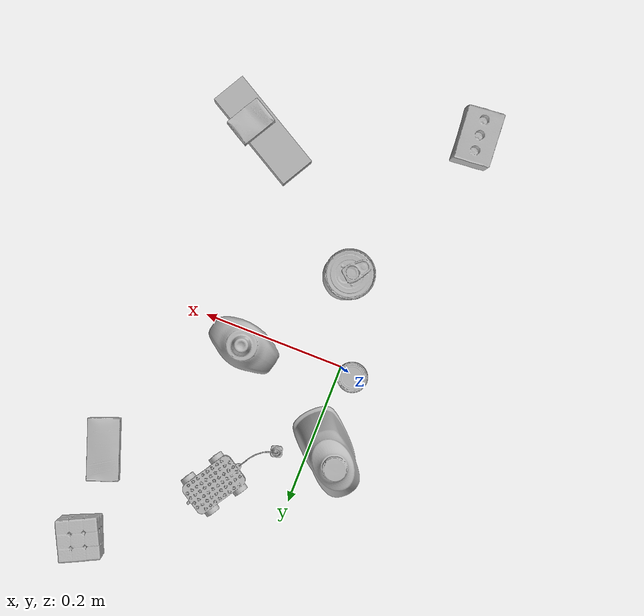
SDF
<sdf version="1.4">
  <world name="default">
    <light name="light1" type="point">
      <pose>0 0 1 0 0 0</pose>
      <diffuse>3 3 3 1</diffuse>
      <specular>3 3 3 1</specular>
    </light>
    <light name="light2" type="point">
      <pose>0 0.5 2 0 0 0</pose>
      <diffuse>1 1 1 1</diffuse>
      <specular>1 1 1 1</specular>
    </light>
    <light name="light3" type="point">
      <pose>0 0.5 2 0 0 0</pose>
      <diffuse>3 3 3 1</diffuse>
      <specular>3 3 3 1</specular>
    </light>
    <scene>
      <ambient>0.7 0.7 0.7</ambient>
    </scene>
    <model name="bottle1">
      <link name="link_bottle1">
        <collision name="default">
          <geometry>
            <mesh>
              <uri>model://bleach_cleanser/collision_meshes/collision.obj</uri>
              <scale>1.0 1.0 1.0</scale>
            </mesh>
          </geometry>
          <surface>
            <friction>
              <ode>
                <mu>0.5</mu>
                <mu2>0.5</mu2>
              </ode>
            </friction>
          <contact>
        <ode>
            <max_vel>0</max_vel>
            <min_depth>0.0001</min_depth>
            <kp>1e8</kp>
        </ode>
    </contact></surface>
        </collision>
        <visual name="default">
          <geometry>
            <mesh>
              <uri>model://bleach_cleanser/visual_meshes/visual.dae</uri>
              <scale>1.0 1.0 1.0</scale>
            </mesh>
          </geometry>
        </visual>
        <inertial>
          <mass>1.2697166204452515</mass>
          <pose>0.00012193183647468686 0.003783883061259985 -0.02442161738872528 -0.07381670616315505 0.00042011510954057825 -0.0068750724928957506</pose>
          <inertia>
            <ixx>0.0061798943</ixx>
            <iyy>0.0057587572</iyy>
            <izz>0.0010566014</izz>
            <ixy>0</ixy>
            <ixz>0</ixz>
            <iyz>0</iyz>
          </inertia>
        </inertial>
      </link>
      <pose>-0.01806124672293663 0.10745850205421448 0.1257629543542862 -0.004417069552187082 0.005747322516653199 0.8296958988827333</pose>
    </model>
    <model name="bottle2">
      <link name="link_bottle2">
        <collision name="default">
          <geometry>
            <mesh>
              <uri>model://mustard_bottle/collision_meshes/collision.obj</uri>
              <scale>1.0 1.0 1.0</scale>
            </mesh>
          </geometry>
          <surface>
            <friction>
              <ode>
                <mu>0.5</mu>
                <mu2>0.5</mu2>
              </ode>
            </friction>
          <contact>
        <ode>
            <max_vel>0</max_vel>
            <min_depth>0.0001</min_depth>
            <kp>1e8</kp>
        </ode>
    </contact></surface>
        </collision>
        <visual name="default">
          <geometry>
            <mesh>
              <uri>model://mustard_bottle/visual_meshes/visual.dae</uri>
              <scale>1.0 1.0 1.0</scale>
            </mesh>
          </geometry>
        </visual>
        <inertial>
          <mass>0.7653017640113831</mass>
          <pose>0.000503245391882956 -0.00015647402324248105 -0.01747579500079155 0.0004182327658992807 0.0009465785893850277 0.024853714910462506</pose>
          <inertia>
            <ixx>0.0021251384</ixx>
            <iyy>0.0018646289</iyy>
            <izz>0.0005600813</izz>
            <ixy>0</ixy>
            <ixz>0</ixz>
            <iyz>0</iyz>
          </inertia>
        </inertial>
      </link>
      <pose>0.13551995158195496 0.01893453858792782 0.09583088755607605 -0.012050708587447244 -0.004889914331616507 -1.8319341797772697</pose>
    </model>
    <model name="toy1">
      <link name="link_toy1">
        <collision name="default">
          <geometry>
            <mesh>
              <uri>model://g_lego_duplo/collision_meshes/collision.obj</uri>
              <scale>0.5 0.5 0.5</scale>
            </mesh>
          </geometry>
          <surface>
            <friction>
              <ode>
                <mu>0.5</mu>
                <mu2>0.5</mu2>
              </ode>
            </friction>
          <contact>
        <ode>
            <max_vel>0</max_vel>
            <min_depth>0.0001</min_depth>
            <kp>1e8</kp>
        </ode>
    </contact></surface>
        </collision>
        <visual name="default">
          <geometry>
            <mesh>
              <uri>model://g_lego_duplo/visual_meshes/visual.dae</uri>
              <scale>0.5 0.5 0.5</scale>
            </mesh>
          </geometry>
        </visual>
        <inertial>
          <mass>0.058442164212465286</mass>
          <pose>-0.025023842230439186 0.0008777315961197019 0.0019403378246352077 0.010962970283690966 0.0381082459421261 -0.09653034831594848</pose>
          <inertia>
            <ixx>2.1170836e-05</ixx>
            <iyy>6.4006235e-05</iyy>
            <izz>8.007422e-05</izz>
            <ixy>0</ixy>
            <ixz>0</ixz>
            <iyz>0</iyz>
          </inertia>
        </inertial>
      </link>
      <pose>0.08677255362272263 0.18954718112945557 0.014907903037965298 0.00042191529667390303 -0.0022882666036644524 -2.1362021461978338</pose>
    </model>
    <model name="toy2">
      <link name="link_toy2">
        <collision name="default">
          <geometry>
            <mesh>
              <uri>model://foam_brick/collision_meshes/collision.obj</uri>
              <scale>1.0 1.0 1.0</scale>
            </mesh>
          </geometry>
          <surface>
            <friction>
              <ode>
                <mu>0.5</mu>
                <mu2>0.5</mu2>
              </ode>
            </friction>
          <contact>
        <ode>
            <max_vel>0</max_vel>
            <min_depth>0.0001</min_depth>
            <kp>1e8</kp>
        </ode>
    </contact></surface>
        </collision>
        <visual name="default">
          <geometry>
            <mesh>
              <uri>model://foam_brick/visual_meshes/visual.dae</uri>
              <scale>1.0 1.0 1.0</scale>
            </mesh>
          </geometry>
        </visual>
        <inertial>
          <mass>0.20487983524799347</mass>
          <pose>-0.0002522472059354186 0.0003458437859080732 -0.0002532101352699101 -0.2940200921298176 0.01727444945267686 -0.0007449878655710941</pose>
          <inertia>
            <ixx>8.9495355e-05</ixx>
            <iyy>0.0001428839</iyy>
            <izz>0.00014469978</izz>
            <ixy>0</ixy>
            <ixz>0</ixz>
            <iyz>0</iyz>
          </inertia>
        </inertial>
      </link>
      <pose>-0.057058949023485184 -0.36050280928611755 0.025917530059814453 0.013816484124199722 0.004276169035045896 -1.493533201333768</pose>
    </model>
    <model name="can1">
      <link name="link_can1">
        <collision name="default">
          <geometry>
            <mesh>
              <uri>model://tuna_fish_can/collision_meshes/collision.obj</uri>
              <scale>0.5 0.5 0.5</scale>
            </mesh>
          </geometry>
          <surface>
            <friction>
              <ode>
                <mu>0.5</mu>
                <mu2>0.5</mu2>
              </ode>
            </friction>
          <contact>
        <ode>
            <max_vel>0</max_vel>
            <min_depth>0.0001</min_depth>
            <kp>1e8</kp>
        </ode>
    </contact></surface>
        </collision>
        <visual name="default">
          <geometry>
            <mesh>
              <uri>model://tuna_fish_can/visual_meshes/visual.dae</uri>
              <scale>0.5 0.5 0.5</scale>
            </mesh>
          </geometry>
        </visual>
        <inertial>
          <mass>0.012491201050579548</mass>
          <pose>-2.036202567978762e-05 -7.256427124957554e-06 -0.0005269025568850338 -0.0017944782936896576 0.0001716245920406042 0.24054207470378652</pose>
          <inertia>
            <ixx>1.6888293e-06</ixx>
            <iyy>1.6817903e-06</iyy>
            <izz>2.889828e-06</izz>
            <ixy>0</ixy>
            <ixz>0</ixz>
            <iyz>0</iyz>
          </inertia>
        </inertial>
      </link>
      <pose>-0.018967220559716225 0.007131262216717005 0.00851999968290329 2.4982853014637737e-09 4.01099968699811e-08 -0.36021116717030893</pose>
    </model>
    <model name="can2">
      <link name="link_can2">
        <collision name="default">
          <geometry>
            <mesh>
              <uri>model://tomato_soup_can/collision_meshes/collision.obj</uri>
              <scale>1.0 1.0 1.0</scale>
            </mesh>
          </geometry>
          <surface>
            <friction>
              <ode>
                <mu>0.5</mu>
                <mu2>0.5</mu2>
              </ode>
            </friction>
          <contact>
        <ode>
            <max_vel>0</max_vel>
            <min_depth>0.0001</min_depth>
            <kp>1e8</kp>
        </ode>
    </contact></surface>
        </collision>
        <visual name="default">
          <geometry>
            <mesh>
              <uri>model://tomato_soup_can/visual_meshes/visual.dae</uri>
              <scale>1.0 1.0 1.0</scale>
            </mesh>
          </geometry>
        </visual>
        <inertial>
          <mass>0.1827235370874405</mass>
          <pose>0.00012652271834667772 0.00010805515921674669 -0.0017973986687138677 0.007020070640758328 0.00042299385100205743 -0.009903366123441316</pose>
          <inertia>
            <ixx>0.00020034082</ixx>
            <iyy>0.00019918295</iyy>
            <izz>0.00010383482</izz>
            <ixy>0</ixy>
            <ixz>0</ixz>
            <iyz>0</iyz>
          </inertia>
        </inertial>
      </link>
      <pose>0.0391361303627491 -0.11944202333688736 0.05127401277422905 -5.133906427221047e-07 -8.512124093058325e-07 -0.9977360181117683</pose>
    </model>
    <model name="box1">
      <link name="link_box1">
        <collision name="default">
          <geometry>
            <mesh>
              <uri>model://jenga/collision_meshes/collision.obj</uri>
              <scale>1.0 1.0 1.0</scale>
            </mesh>
          </geometry>
          <surface>
            <friction>
              <ode>
                <mu>0.5</mu>
                <mu2>0.5</mu2>
              </ode>
            </friction>
          <contact>
        <ode>
            <max_vel>0</max_vel>
            <min_depth>0.0001</min_depth>
            <kp>1e8</kp>
        </ode>
    </contact></surface>
        </collision>
        <visual name="default">
          <geometry>
            <mesh>
              <uri>model://jenga/visual_meshes/visual.dae</uri>
              <scale>1.0 1.0 1.0</scale>
            </mesh>
          </geometry>
        </visual>
        <inertial>
          <mass>0.23032541573047638</mass>
          <pose>-2.502855807051674e-07 -0.00010250010382151231 -4.0923401684267446e-05 0.0 -7.342154049184251e-07 0.0</pose>
          <inertia>
            <ixx>6.3736625e-05</ixx>
            <iyy>0.00043187768</iyy>
            <izz>0.00046106614</izz>
            <ixy>0</ixy>
            <ixz>0</ixz>
            <iyz>0</iyz>
          </inertia>
        </inertial>
      </link>
      <pose>0.21926674246788025 -0.26279544830322266 0.015000002458691597 -5.6870832174164664e-08 -1.61421228078753e-08 -0.5135149021954627</pose>
    </model>
    <model name="box2">
      <link name="link_box2">
        <collision name="default">
          <geometry>
            <mesh>
              <uri>model://cracker_box/collision_meshes/collision.obj</uri>
              <scale>0.25 0.25 0.25</scale>
            </mesh>
          </geometry>
          <surface>
            <friction>
              <ode>
                <mu>0.5</mu>
                <mu2>0.5</mu2>
              </ode>
            </friction>
          <contact>
        <ode>
            <max_vel>0</max_vel>
            <min_depth>0.0001</min_depth>
            <kp>1e8</kp>
        </ode>
    </contact></surface>
        </collision>
        <visual name="default">
          <geometry>
            <mesh>
              <uri>model://cracker_box/visual_meshes/visual.dae</uri>
              <scale>0.25 0.25 0.25</scale>
            </mesh>
          </geometry>
        </visual>
        <inertial>
          <mass>0.037928901612758636</mass>
          <pose>0.0002366034168517217 6.358561222441494e-05 -0.000425738311605528 -0.00031620771242973385 -0.011106489600347247 0.002546794536796529</pose>
          <inertia>
            <ixx>6.029637e-06</ixx>
            <iyy>9.956116e-06</iyy>
            <izz>1.420829e-05</izz>
            <ixy>0</ixy>
            <ixz>0</ixz>
            <iyz>0</iyz>
          </inertia>
        </inertial>
      </link>
      <pose>0.2377336621284485 -0.26595717668533325 0.03912045806646347 -0.01178901596155368 -0.007367203136092805 1.0492925051491886</pose>
    </model>
    <model name="box3">
      <link name="link_box3">
        <collision name="default">
          <geometry>
            <mesh>
              <uri>model://sugar_box/collision_meshes/collision.obj</uri>
              <scale>0.5 0.5 0.5</scale>
            </mesh>
          </geometry>
          <surface>
            <friction>
              <ode>
                <mu>0.5</mu>
                <mu2>0.5</mu2>
              </ode>
            </friction>
          <contact>
        <ode>
            <max_vel>0</max_vel>
            <min_depth>0.0001</min_depth>
            <kp>1e8</kp>
        </ode>
    </contact></surface>
        </collision>
        <visual name="default">
          <geometry>
            <mesh>
              <uri>model://sugar_box/visual_meshes/visual.dae</uri>
              <scale>0.5 0.5 0.5</scale>
            </mesh>
          </geometry>
        </visual>
        <inertial>
          <mass>0.11577744781970978</mass>
          <pose>0.0005171863595023751 1.9245549992774613e-05 -0.00018182402709499002 -0.0004046260967602003 0.0010506636382171825 0.002615378323343388</pose>
          <inertia>
            <ixx>2.4116362e-05</ixx>
            <iyy>7.7949044e-05</iyy>
            <izz>9.3314295e-05</izz>
            <ixy>0</ixy>
            <ixz>0</ixz>
            <iyz>0</iyz>
          </inertia>
        </inertial>
      </link>
      <pose>0.26362448930740356 0.22490547597408295 0.011399300768971443 0.0007753589666698535 -0.02343248900216677 -1.2285718425436927</pose>
    </model>
    <model name="box4">
      <link name="link_box4">
        <collision name="default">
          <geometry>
            <mesh>
              <uri>model://rubiks_cube/collision_meshes/collision.obj</uri>
              <scale>1.0 1.0 1.0</scale>
            </mesh>
          </geometry>
          <surface>
            <friction>
              <ode>
                <mu>0.5</mu>
                <mu2>0.5</mu2>
              </ode>
            </friction>
          <contact>
        <ode>
            <max_vel>0</max_vel>
            <min_depth>0.0001</min_depth>
            <kp>1e8</kp>
        </ode>
    </contact></surface>
        </collision>
        <visual name="default">
          <geometry>
            <mesh>
              <uri>model://rubiks_cube/visual_meshes/visual.dae</uri>
              <scale>1.0 1.0 1.0</scale>
            </mesh>
          </geometry>
        </visual>
        <inertial>
          <mass>0.277982622385025</mass>
          <pose>2.6721041649580002e-05 5.2569666877388954e-05 -7.264316082000732e-06 -0.05467259342135701 -0.09814005995908277 -0.03445491653702878</pose>
          <inertia>
            <ixx>0.00015360407</ixx>
            <iyy>0.00015288773</iyy>
            <izz>0.00015487692</izz>
            <ixy>0</ixy>
            <ixz>0</ixz>
            <iyz>0</iyz>
          </inertia>
        </inertial>
      </link>
      <pose>0.24791280925273895 0.34643399715423584 0.02867899276316166 -2.4026471417673893e-06 -5.157813817838202e-07 -1.1198846618102416</pose>
    </model>
  <physics type="ode">
      <max_contacts>50</max_contacts>
      <ode>
        <solver>
          <type>quick</type>
          <iters>75</iters>
        </solver>
        <constraints>
          <contact_max_correcting_vel>0</contact_max_correcting_vel>
          <contact_surface_layer>0</contact_surface_layer>
        </constraints>
      </ode>
    </physics></world>
</sdf>
